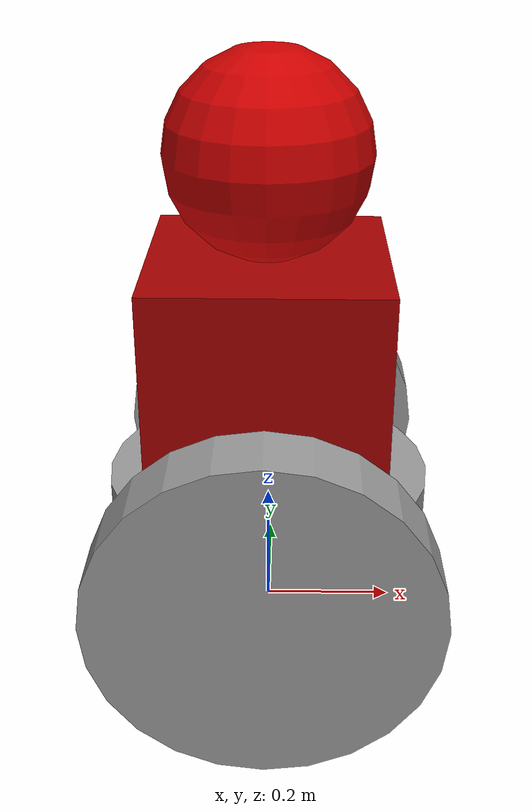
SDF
<?xml version='1.0'?>
<sdf version='1.7'>
  <model name='TwoWheeledRobot'>
    <link name='link_0'>
      <inertial>
        <mass>1</mass>
        <inertia>
          <ixx>0.145833</ixx>
          <ixy>0</ixy>
          <ixz>0</ixz>
          <iyy>0.145833</iyy>
          <iyz>0</iyz>
          <izz>0.125</izz>
        </inertia>
        <pose>0 0 0 0 -0 0</pose>
      </inertial>
      <pose>0 0 0.2 0 -0 0</pose>
      <gravity>1</gravity>
      <self_collide>0</self_collide>
      <kinematic>0</kinematic>
      <enable_wind>0</enable_wind>
      <visual name='visual'>
        <pose>0 0 0 0 -0 0</pose>
        <geometry>
          <cylinder>
            <radius>0.25</radius>
            <length>0.1</length>
          </cylinder>
        </geometry>
        <material>
          <lighting>1</lighting>
          <script>
            <uri>file://media/materials/scripts/gazebo.material</uri>
            <name>Gazebo/Grey</name>
          </script>
          <shader type='pixel'>
            <normal_map>__default__</normal_map>
          </shader>
          <ambient>0.333 0.341 0.325 1</ambient>
          <diffuse>0.333 0.341 0.325 1</diffuse>
          <specular>0.333 0.341 0.325 1</specular>
          <emissive>0 0 0 1</emissive>
        </material>
        <transparency>0</transparency>
        <cast_shadows>1</cast_shadows>
      </visual>
      <collision name='collision'>
        <laser_retro>0</laser_retro>
        <max_contacts>10</max_contacts>
        <pose>0 0 0 0 -0 0</pose>
        <geometry>
          <cylinder>
            <radius>0.25</radius>
            <length>0.1</length>
          </cylinder>
        </geometry>
        <surface>
          <friction>
            <ode>
              <mu>1</mu>
              <mu2>1</mu2>
              <fdir1>0 0 0</fdir1>
              <slip1>0</slip1>
              <slip2>0</slip2>
            </ode>
            <torsional>
              <coefficient>1</coefficient>
              <patch_radius>0</patch_radius>
              <surface_radius>0</surface_radius>
              <use_patch_radius>1</use_patch_radius>
              <ode>
                <slip>0</slip>
              </ode>
            </torsional>
          </friction>
          <bounce>
            <restitution_coefficient>0</restitution_coefficient>
            <threshold>1e+06</threshold>
          </bounce>
          <contact>
            <collide_without_contact>0</collide_without_contact>
            <collide_without_contact_bitmask>1</collide_without_contact_bitmask>
            <collide_bitmask>1</collide_bitmask>
            <ode>
              <soft_cfm>0</soft_cfm>
              <soft_erp>0.2</soft_erp>
              <kp>1e+13</kp>
              <kd>1</kd>
              <max_vel>0.01</max_vel>
              <min_depth>0</min_depth>
            </ode>
            <bullet>
              <split_impulse>1</split_impulse>
              <split_impulse_penetration_threshold>-0.01</split_impulse_penetration_threshold>
              <soft_cfm>0</soft_cfm>
              <soft_erp>0.2</soft_erp>
              <kp>1e+13</kp>
              <kd>1</kd>
            </bullet>
          </contact>
        </surface>
      </collision>
    </link>
    <link name='link_1'>
      <inertial>
        <mass>1</mass>
        <inertia>
          <ixx>0.145833</ixx>
          <ixy>0</ixy>
          <ixz>0</ixz>
          <iyy>0.145833</iyy>
          <iyz>0</iyz>
          <izz>0.125</izz>
        </inertia>
        <pose>0 0 0 0 -0 0</pose>
      </inertial>
      <pose>0 -0.300024 0.2 1.5707 -0 0</pose>
      <gravity>1</gravity>
      <self_collide>0</self_collide>
      <kinematic>0</kinematic>
      <enable_wind>0</enable_wind>
      <visual name='visual'>
        <pose>0 0 0 0 -0 0</pose>
        <geometry>
          <cylinder>
            <radius>0.25</radius>
            <length>0.1</length>
          </cylinder>
        </geometry>
        <material>
          <lighting>1</lighting>
          <script>
            <uri>file://media/materials/scripts/gazebo.material</uri>
            <name>Gazebo/Grey</name>
          </script>
          <shader type='pixel'>
            <normal_map>__default__</normal_map>
          </shader>
          <ambient>0 0 0 1</ambient>
          <diffuse>0 0 0 1</diffuse>
          <specular>0 0 0 1</specular>
          <emissive>0 0 0 1</emissive>
        </material>
        <transparency>0</transparency>
        <cast_shadows>1</cast_shadows>
      </visual>
      <collision name='collision'>
        <laser_retro>0</laser_retro>
        <max_contacts>10</max_contacts>
        <pose>0 0 0 0 -0 0</pose>
        <geometry>
          <cylinder>
            <radius>0.25</radius>
            <length>0.1</length>
          </cylinder>
        </geometry>
        <surface>
          <friction>
            <ode>
              <mu>1</mu>
              <mu2>1</mu2>
              <fdir1>0 0 0</fdir1>
              <slip1>0</slip1>
              <slip2>0</slip2>
            </ode>
            <torsional>
              <coefficient>1</coefficient>
              <patch_radius>0</patch_radius>
              <surface_radius>0</surface_radius>
              <use_patch_radius>1</use_patch_radius>
              <ode>
                <slip>0</slip>
              </ode>
            </torsional>
          </friction>
          <bounce>
            <restitution_coefficient>0</restitution_coefficient>
            <threshold>1e+06</threshold>
          </bounce>
          <contact>
            <collide_without_contact>0</collide_without_contact>
            <collide_without_contact_bitmask>1</collide_without_contact_bitmask>
            <collide_bitmask>1</collide_bitmask>
            <ode>
              <soft_cfm>0</soft_cfm>
              <soft_erp>0.2</soft_erp>
              <kp>1e+13</kp>
              <kd>1</kd>
              <max_vel>0.01</max_vel>
              <min_depth>0</min_depth>
            </ode>
            <bullet>
              <split_impulse>1</split_impulse>
              <split_impulse_penetration_threshold>-0.01</split_impulse_penetration_threshold>
              <soft_cfm>0</soft_cfm>
              <soft_erp>0.2</soft_erp>
              <kp>1e+13</kp>
              <kd>1</kd>
            </bullet>
          </contact>
        </surface>
      </collision>
    </link>
    <link name='link_1_clone'>
      <inertial>
        <mass>1</mass>
        <inertia>
          <ixx>0.145833</ixx>
          <ixy>0</ixy>
          <ixz>0</ixz>
          <iyy>0.145833</iyy>
          <iyz>0</iyz>
          <izz>0.125</izz>
        </inertia>
        <pose>0 0 0 0 -0 0</pose>
      </inertial>
      <pose>0 0.300024 0.2 1.5707 -0 0</pose>
      <gravity>1</gravity>
      <self_collide>0</self_collide>
      <kinematic>0</kinematic>
      <enable_wind>0</enable_wind>
      <visual name='visual'>
        <pose>0 0 0 0 -0 0</pose>
        <geometry>
          <cylinder>
            <radius>0.25</radius>
            <length>0.1</length>
          </cylinder>
        </geometry>
        <material>
          <lighting>1</lighting>
          <script>
            <uri>file://media/materials/scripts/gazebo.material</uri>
            <name>Gazebo/Grey</name>
          </script>
          <shader type='pixel'>
            <normal_map>__default__</normal_map>
          </shader>
          <ambient>0 0 0 1</ambient>
          <diffuse>0 0 0 1</diffuse>
          <specular>0 0 0 1</specular>
          <emissive>0 0 0 1</emissive>
        </material>
        <transparency>0</transparency>
        <cast_shadows>1</cast_shadows>
      </visual>
      <collision name='collision'>
        <laser_retro>0</laser_retro>
        <max_contacts>10</max_contacts>
        <pose>0 0 0 0 -0 0</pose>
        <geometry>
          <cylinder>
            <radius>0.25</radius>
            <length>0.1</length>
          </cylinder>
        </geometry>
        <surface>
          <friction>
            <ode>
              <mu>1</mu>
              <mu2>1</mu2>
              <fdir1>0 0 0</fdir1>
              <slip1>0</slip1>
              <slip2>0</slip2>
            </ode>
            <torsional>
              <coefficient>1</coefficient>
              <patch_radius>0</patch_radius>
              <surface_radius>0</surface_radius>
              <use_patch_radius>1</use_patch_radius>
              <ode>
                <slip>0</slip>
              </ode>
            </torsional>
          </friction>
          <bounce>
            <restitution_coefficient>0</restitution_coefficient>
            <threshold>1e+06</threshold>
          </bounce>
          <contact>
            <collide_without_contact>0</collide_without_contact>
            <collide_without_contact_bitmask>1</collide_without_contact_bitmask>
            <collide_bitmask>1</collide_bitmask>
            <ode>
              <soft_cfm>0</soft_cfm>
              <soft_erp>0.2</soft_erp>
              <kp>1e+13</kp>
              <kd>1</kd>
              <max_vel>0.01</max_vel>
              <min_depth>0</min_depth>
            </ode>
            <bullet>
              <split_impulse>1</split_impulse>
              <split_impulse_penetration_threshold>-0.01</split_impulse_penetration_threshold>
              <soft_cfm>0</soft_cfm>
              <soft_erp>0.2</soft_erp>
              <kp>1e+13</kp>
              <kd>1</kd>
            </bullet>
          </contact>
        </surface>
      </collision>
    </link>
    <link name='link_2'>
      <inertial>
        <mass>1</mass>
        <inertia>
          <ixx>0.166667</ixx>
          <ixy>0</ixy>
          <ixz>0</ixz>
          <iyy>0.166667</iyy>
          <iyz>0</iyz>
          <izz>0.166667</izz>
        </inertia>
        <pose>0 0 0 0 -0 0</pose>
      </inertial>
      <pose>0 0 0.43 0 -0 0</pose>
      <gravity>1</gravity>
      <self_collide>0</self_collide>
      <kinematic>0</kinematic>
      <enable_wind>0</enable_wind>
      <visual name='visual'>
        <pose>0 0 0 0 -0 0</pose>
        <geometry>
          <box>
            <size>0.35 0.35 0.35</size>
          </box>
        </geometry>
        <material>
          <lighting>1</lighting>
          <script>
            <uri>file://media/materials/scripts/gazebo.material</uri>
            <name>Gazebo/Grey</name>
          </script>
          <shader type='pixel'>
            <normal_map>__default__</normal_map>
          </shader>
          <ambient>0.643 0 0 1</ambient>
          <diffuse>0.643 0 0 1</diffuse>
          <specular>0.01 0.01 0.01 1</specular>
          <emissive>0 0 0 1</emissive>
        </material>
        <transparency>0</transparency>
        <cast_shadows>1</cast_shadows>
      </visual>
      <collision name='collision'>
        <laser_retro>0</laser_retro>
        <max_contacts>10</max_contacts>
        <pose>0 0 0 0 -0 0</pose>
        <geometry>
          <box>
            <size>0.35 0.35 0.35</size>
          </box>
        </geometry>
        <surface>
          <friction>
            <ode>
              <mu>1</mu>
              <mu2>1</mu2>
              <fdir1>0 0 0</fdir1>
              <slip1>0</slip1>
              <slip2>0</slip2>
            </ode>
            <torsional>
              <coefficient>1</coefficient>
              <patch_radius>0</patch_radius>
              <surface_radius>0</surface_radius>
              <use_patch_radius>1</use_patch_radius>
              <ode>
                <slip>0</slip>
              </ode>
            </torsional>
          </friction>
          <bounce>
            <restitution_coefficient>0</restitution_coefficient>
            <threshold>1e+06</threshold>
          </bounce>
          <contact>
            <collide_without_contact>0</collide_without_contact>
            <collide_without_contact_bitmask>1</collide_without_contact_bitmask>
            <collide_bitmask>1</collide_bitmask>
            <ode>
              <soft_cfm>0</soft_cfm>
              <soft_erp>0.2</soft_erp>
              <kp>1e+13</kp>
              <kd>1</kd>
              <max_vel>0.01</max_vel>
              <min_depth>0</min_depth>
            </ode>
            <bullet>
              <split_impulse>1</split_impulse>
              <split_impulse_penetration_threshold>-0.01</split_impulse_penetration_threshold>
              <soft_cfm>0</soft_cfm>
              <soft_erp>0.2</soft_erp>
              <kp>1e+13</kp>
              <kd>1</kd>
            </bullet>
          </contact>
        </surface>
      </collision>
    </link>
    <link name='link_3'>
      <inertial>
        <mass>1</mass>
        <inertia>
          <ixx>0.1</ixx>
          <ixy>0</ixy>
          <ixz>0</ixz>
          <iyy>0.1</iyy>
          <iyz>0</iyz>
          <izz>0.1</izz>
        </inertia>
        <pose>0 0 0 0 -0 0</pose>
      </inertial>
      <pose>0 0 0.75 0 -0 0</pose>
      <gravity>1</gravity>
      <self_collide>0</self_collide>
      <kinematic>0</kinematic>
      <enable_wind>0</enable_wind>
      <visual name='visual'>
        <pose>0 0 0 0 -0 0</pose>
        <geometry>
          <sphere>
            <radius>0.15</radius>
          </sphere>
        </geometry>
        <material>
          <lighting>1</lighting>
          <script>
            <uri>file://media/materials/scripts/gazebo.material</uri>
            <name>Gazebo/Grey</name>
          </script>
          <shader type='pixel'>
            <normal_map>__default__</normal_map>
          </shader>
          <ambient>0.937 0.161 0.161 1</ambient>
          <diffuse>0.8 0 0 1</diffuse>
          <specular>0.937 0.161 0.161 1</specular>
          <emissive>0 0 0 1</emissive>
        </material>
        <transparency>0</transparency>
        <cast_shadows>1</cast_shadows>
      </visual>
      <collision name='collision'>
        <laser_retro>0</laser_retro>
        <max_contacts>10</max_contacts>
        <pose>0 0 0 0 -0 0</pose>
        <geometry>
          <sphere>
            <radius>0.15</radius>
          </sphere>
        </geometry>
        <surface>
          <friction>
            <ode>
              <mu>1</mu>
              <mu2>1</mu2>
              <fdir1>0 0 0</fdir1>
              <slip1>0</slip1>
              <slip2>0</slip2>
            </ode>
            <torsional>
              <coefficient>1</coefficient>
              <patch_radius>0</patch_radius>
              <surface_radius>0</surface_radius>
              <use_patch_radius>1</use_patch_radius>
              <ode>
                <slip>0</slip>
              </ode>
            </torsional>
          </friction>
          <bounce>
            <restitution_coefficient>0</restitution_coefficient>
            <threshold>1e+06</threshold>
          </bounce>
          <contact>
            <collide_without_contact>0</collide_without_contact>
            <collide_without_contact_bitmask>1</collide_without_contact_bitmask>
            <collide_bitmask>1</collide_bitmask>
            <ode>
              <soft_cfm>0</soft_cfm>
              <soft_erp>0.2</soft_erp>
              <kp>1e+13</kp>
              <kd>1</kd>
              <max_vel>0.01</max_vel>
              <min_depth>0</min_depth>
            </ode>
            <bullet>
              <split_impulse>1</split_impulse>
              <split_impulse_penetration_threshold>-0.01</split_impulse_penetration_threshold>
              <soft_cfm>0</soft_cfm>
              <soft_erp>0.2</soft_erp>
              <kp>1e+13</kp>
              <kd>1</kd>
            </bullet>
          </contact>
        </surface>
      </collision>
    </link>
    <joint name='link_0_JOINT_0' type='revolute'>
      <parent>link_0</parent>
      <child>link_1</child>
      <pose>0 0 0 0 -0 0</pose>
      <axis>
        <xyz>0 0 1</xyz>
        <limit>
          <lower>-1.79769e+308</lower>
          <upper>1.79769e+308</upper>
          <effort>-1</effort>
          <velocity>-1</velocity>
        </limit>
        <dynamics>
          <spring_reference>0</spring_reference>
          <spring_stiffness>0</spring_stiffness>
          <damping>0</damping>
        </dynamics>
      </axis>
      <physics>
        <ode>
          <limit>
            <cfm>0</cfm>
            <erp>0.2</erp>
          </limit>
          <suspension>
            <cfm>0</cfm>
            <erp>0.2</erp>
          </suspension>
        </ode>
      </physics>
    </joint>
    <joint name='link_0_JOINT_1' type='revolute'>
      <parent>link_0</parent>
      <child>link_1_clone</child>
      <pose>0 0 0 0 -0 0</pose>
      <axis>
        <xyz>0 0 1</xyz>
        <limit>
          <lower>-1.79769e+308</lower>
          <upper>1.79769e+308</upper>
          <effort>-1</effort>
          <velocity>-1</velocity>
        </limit>
        <dynamics>
          <spring_reference>0</spring_reference>
          <spring_stiffness>0</spring_stiffness>
          <damping>0</damping>
        </dynamics>
      </axis>
      <physics>
        <ode>
          <limit>
            <cfm>0</cfm>
            <erp>0.2</erp>
          </limit>
          <suspension>
            <cfm>0</cfm>
            <erp>0.2</erp>
          </suspension>
        </ode>
      </physics>
    </joint>
    <joint name='link_0_JOINT_5' type='fixed'>
      <parent>link_0</parent>
      <child>link_2</child>
      <pose>0 0 0 0 -0 0</pose>
      <physics>
        <ode>
          <limit>
            <cfm>0</cfm>
            <erp>0.2</erp>
          </limit>
          <suspension>
            <cfm>0</cfm>
            <erp>0.2</erp>
          </suspension>
        </ode>
      </physics>
    </joint>
    <joint name='link_2_JOINT_6' type='fixed'>
      <parent>link_2</parent>
      <child>link_3</child>
      <pose>0 0 0 0 -0 0</pose>
      <physics>
        <ode>
          <limit>
            <cfm>0</cfm>
            <erp>0.2</erp>
          </limit>
          <suspension>
            <cfm>0</cfm>
            <erp>0.2</erp>
          </suspension>
        </ode>
      </physics>
    </joint>
    <static>0</static>
    <allow_auto_disable>1</allow_auto_disable>
  </model>
</sdf>
